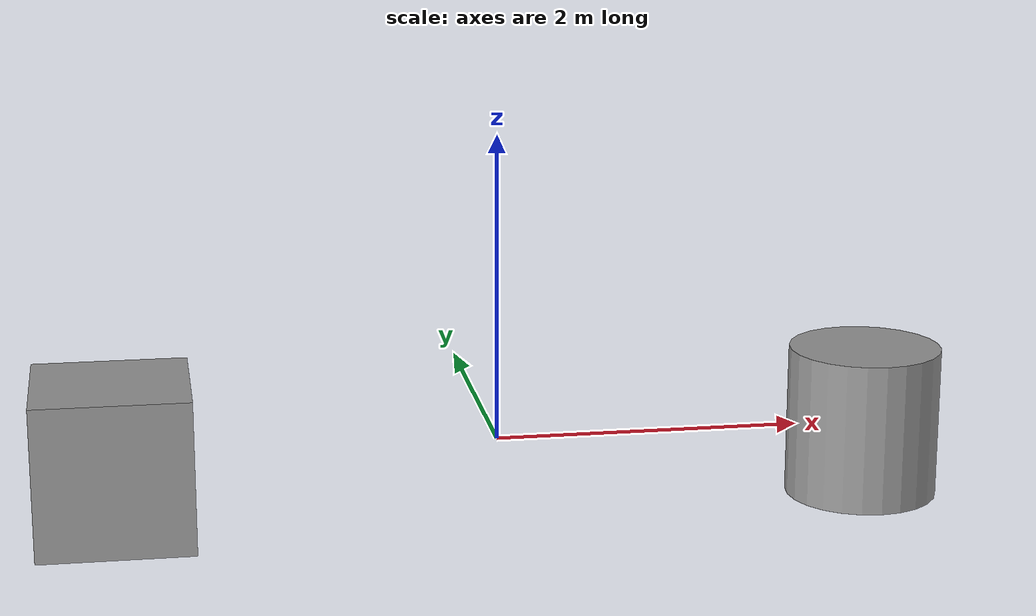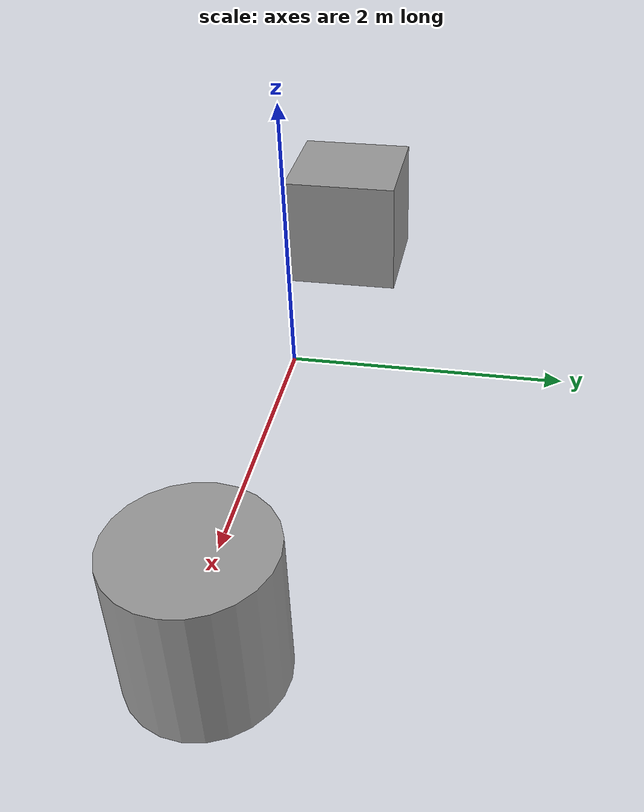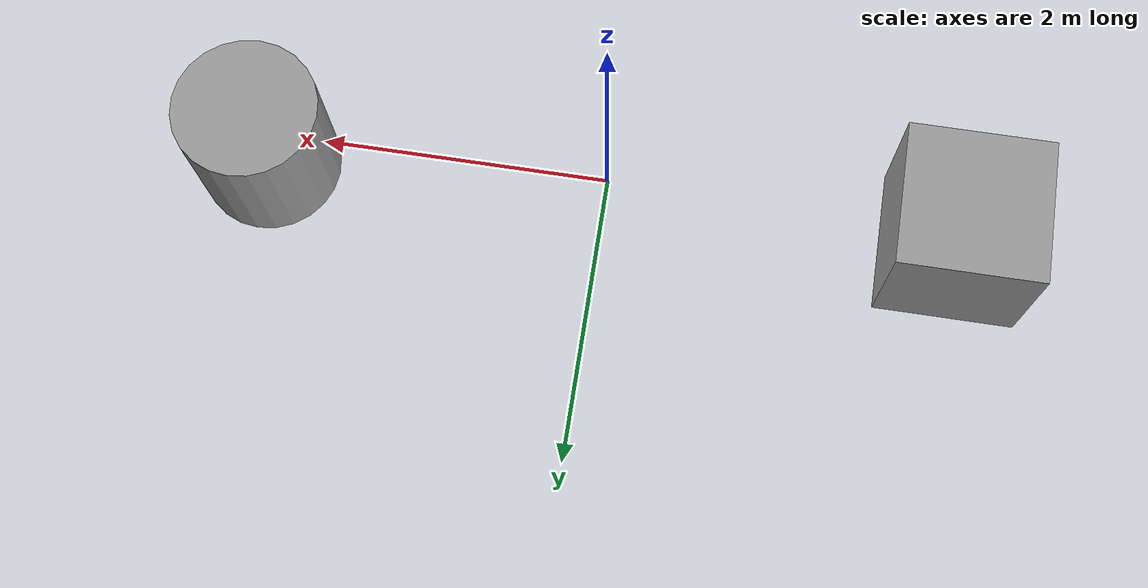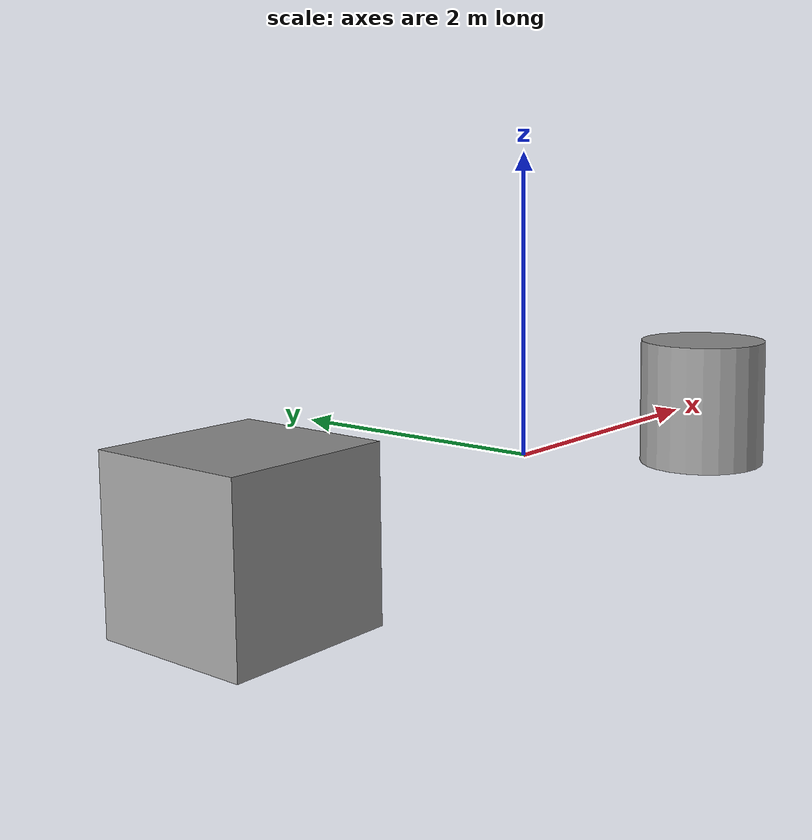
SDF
<?xml version='1.0'?>
<sdf version='1.7'>
  <model name='Env2_Obstacles'>
    <link name='link_0'>
      <inertial>
        <mass>100</mass>
        <inertia>
          <ixx>14.5833</ixx>
          <ixy>0</ixy>
          <ixz>0</ixz>
          <iyy>14.5833</iyy>
          <iyz>0</iyz>
          <izz>12.5</izz>
        </inertia>
        <pose>0 0 0 0 -0 0</pose>
      </inertial>
      <pose>2.46773 0.030105 0 0 -0 0</pose>
      <gravity>1</gravity>
      <self_collide>0</self_collide>
      <kinematic>0</kinematic>
      <enable_wind>0</enable_wind>
      <visual name='visual'>
        <pose>0 0 0 0 -0 0</pose>
        <geometry>
          <cylinder>
            <radius>0.5</radius>
            <length>1</length>
          </cylinder>
        </geometry>
        <material>
          <lighting>1</lighting>
          <script>
            <uri>file://media/materials/scripts/gazebo.material</uri>
            <name>Gazebo/Grey</name>
          </script>
          <shader type='pixel'>
            <normal_map>__default__</normal_map>
          </shader>
        </material>
        <transparency>0</transparency>
        <cast_shadows>1</cast_shadows>
      </visual>
      <collision name='collision'>
        <laser_retro>0</laser_retro>
        <max_contacts>10</max_contacts>
        <pose>0 0 0 0 -0 0</pose>
        <geometry>
          <cylinder>
            <radius>0.5</radius>
            <length>1</length>
          </cylinder>
        </geometry>
        <surface>
          <friction>
            <ode>
              <mu>1</mu>
              <mu2>1</mu2>
              <fdir1>0 0 0</fdir1>
              <slip1>0</slip1>
              <slip2>0</slip2>
            </ode>
            <torsional>
              <coefficient>1</coefficient>
              <patch_radius>0</patch_radius>
              <surface_radius>0</surface_radius>
              <use_patch_radius>1</use_patch_radius>
              <ode>
                <slip>0</slip>
              </ode>
            </torsional>
          </friction>
          <bounce>
            <restitution_coefficient>0</restitution_coefficient>
            <threshold>1e+06</threshold>
          </bounce>
          <contact>
            <collide_without_contact>0</collide_without_contact>
            <collide_without_contact_bitmask>1</collide_without_contact_bitmask>
            <collide_bitmask>1</collide_bitmask>
            <ode>
              <soft_cfm>0</soft_cfm>
              <soft_erp>0.2</soft_erp>
              <kp>1e+13</kp>
              <kd>1</kd>
              <max_vel>0.01</max_vel>
              <min_depth>0</min_depth>
            </ode>
            <bullet>
              <split_impulse>1</split_impulse>
              <split_impulse_penetration_threshold>-0.01</split_impulse_penetration_threshold>
              <soft_cfm>0</soft_cfm>
              <soft_erp>0.2</soft_erp>
              <kp>1e+13</kp>
              <kd>1</kd>
            </bullet>
          </contact>
        </surface>
      </collision>
    </link>
    <link name='link_1'>
      <inertial>
        <mass>100</mass>
        <inertia>
          <ixx>16.6667</ixx>
          <ixy>0</ixy>
          <ixz>0</ixz>
          <iyy>16.6667</iyy>
          <iyz>0</iyz>
          <izz>16.6667</izz>
        </inertia>
        <pose>0 0 0 0 -0 0</pose>
      </inertial>
      <pose>-2.46773 -0.030105 0 0 -0 0</pose>
      <gravity>1</gravity>
      <self_collide>0</self_collide>
      <kinematic>0</kinematic>
      <enable_wind>0</enable_wind>
      <visual name='visual'>
        <pose>0 0 0 0 -0 0</pose>
        <geometry>
          <box>
            <size>1 1 1</size>
          </box>
        </geometry>
        <material>
          <lighting>1</lighting>
          <script>
            <uri>file://media/materials/scripts/gazebo.material</uri>
            <name>Gazebo/Grey</name>
          </script>
          <shader type='pixel'>
            <normal_map>__default__</normal_map>
          </shader>
        </material>
        <transparency>0</transparency>
        <cast_shadows>1</cast_shadows>
      </visual>
      <collision name='collision'>
        <laser_retro>0</laser_retro>
        <max_contacts>10</max_contacts>
        <pose>0 0 0 0 -0 0</pose>
        <geometry>
          <box>
            <size>1 1 1</size>
          </box>
        </geometry>
        <surface>
          <friction>
            <ode>
              <mu>1</mu>
              <mu2>1</mu2>
              <fdir1>0 0 0</fdir1>
              <slip1>0</slip1>
              <slip2>0</slip2>
            </ode>
            <torsional>
              <coefficient>1</coefficient>
              <patch_radius>0</patch_radius>
              <surface_radius>0</surface_radius>
              <use_patch_radius>1</use_patch_radius>
              <ode>
                <slip>0</slip>
              </ode>
            </torsional>
          </friction>
          <bounce>
            <restitution_coefficient>0</restitution_coefficient>
            <threshold>1e+06</threshold>
          </bounce>
          <contact>
            <collide_without_contact>0</collide_without_contact>
            <collide_without_contact_bitmask>1</collide_without_contact_bitmask>
            <collide_bitmask>1</collide_bitmask>
            <ode>
              <soft_cfm>0</soft_cfm>
              <soft_erp>0.2</soft_erp>
              <kp>1e+13</kp>
              <kd>1</kd>
              <max_vel>0.01</max_vel>
              <min_depth>0</min_depth>
            </ode>
            <bullet>
              <split_impulse>1</split_impulse>
              <split_impulse_penetration_threshold>-0.01</split_impulse_penetration_threshold>
              <soft_cfm>0</soft_cfm>
              <soft_erp>0.2</soft_erp>
              <kp>1e+13</kp>
              <kd>1</kd>
            </bullet>
          </contact>
        </surface>
      </collision>
    </link>
    <static>0</static>
    <allow_auto_disable>1</allow_auto_disable>
  </model>
</sdf>
